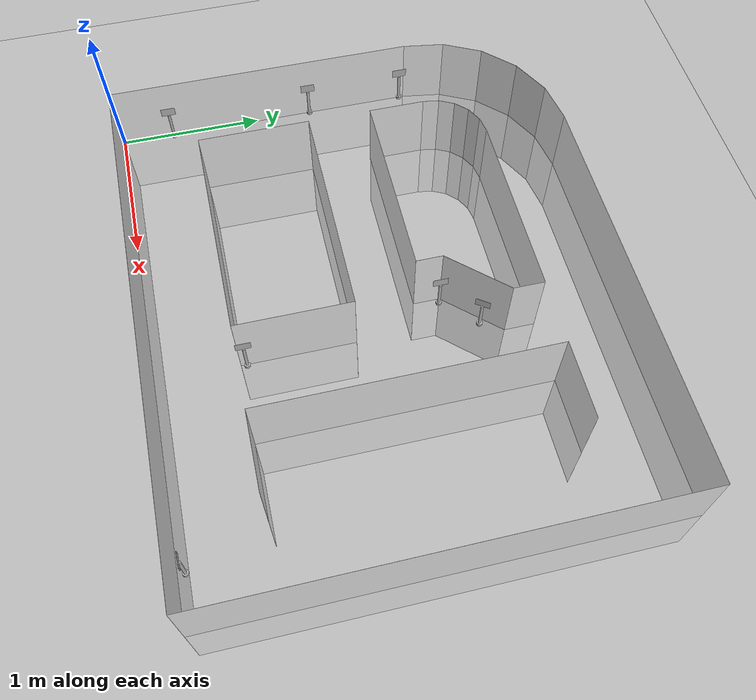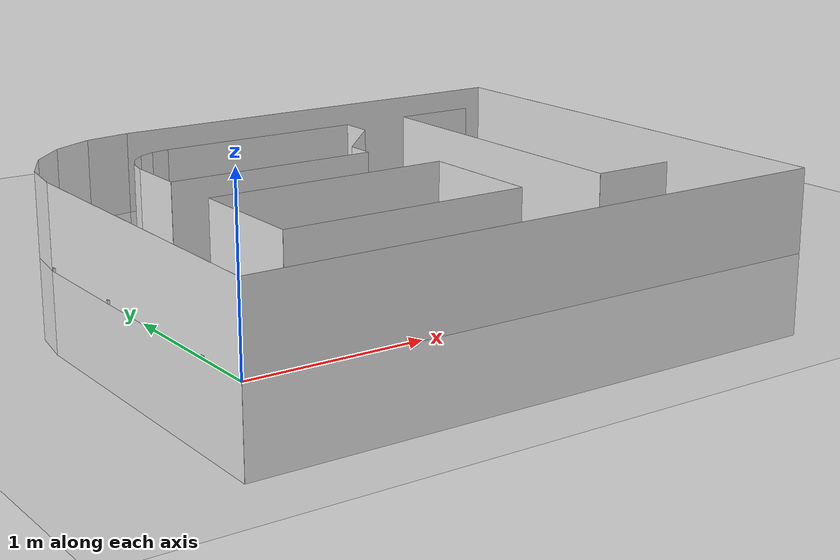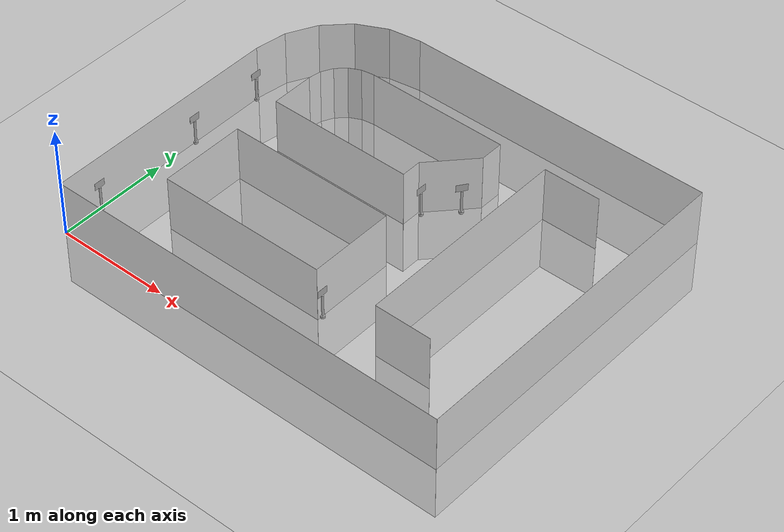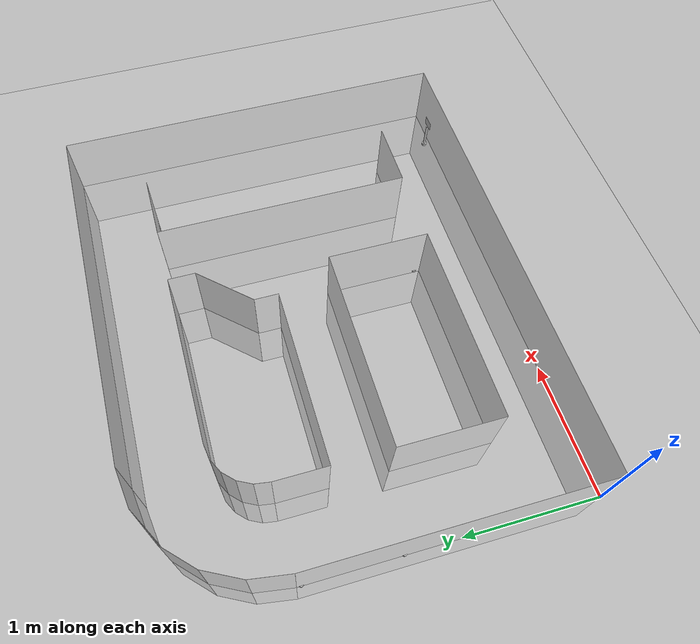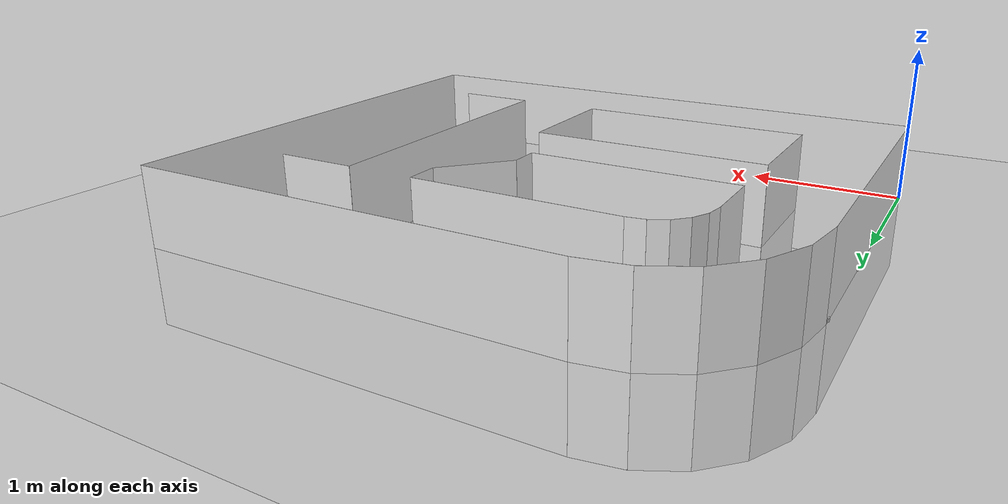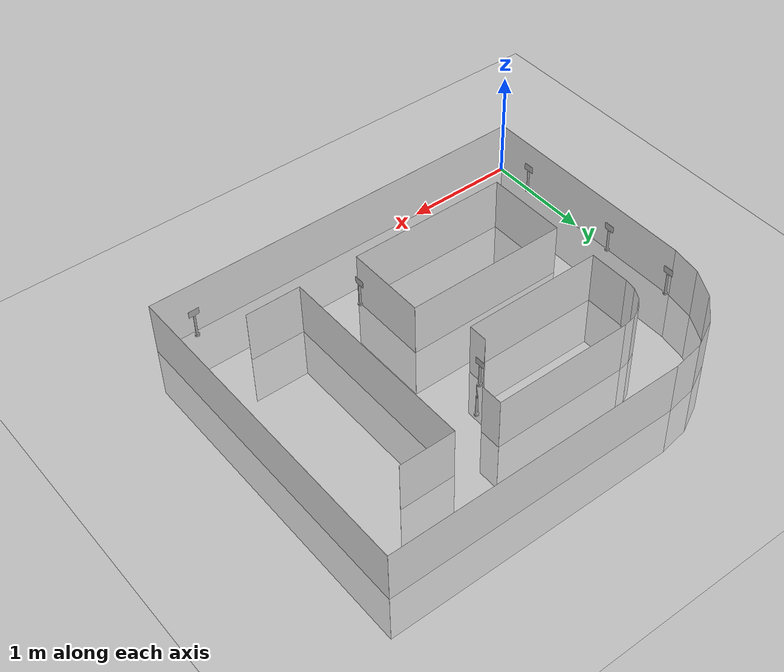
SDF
<sdf version="1.6">
 <world name="default">
  <light name="sun" type="directional">
   <pose>0 0 10 0 -0 0</pose>
   <diffuse>0.8 0.8 0.8 1</diffuse>
   <specular>0.1 0.1 0.1 1</specular>
   <attenuation>
    <range>1000</range>
    <constant>0.9</constant>
    <linear>0.01</linear>
    <quadratic>0.001</quadratic>
   </attenuation>
   <direction>-0.5 0.5 -1</direction>
  </light>
  <model name="ground_plane">
   <static>1</static>
   <link name="link">
    <collision name="collision">
     <geometry><plane><normal>0 0 1</normal><size>100 100</size></plane></geometry>
     <surface><friction><ode><mu>100</mu><mu2>50</mu2></ode></friction></surface>
    </collision>
    <visual name="visual">
     <cast_shadows>0</cast_shadows>
     <geometry><plane><normal>0 0 1</normal><size>100 100</size></plane></geometry>
     <material>
      <script><uri>file://media/materials/scripts/gazebo.material</uri><name>Gazebo/Grey</name></script>
     </material>
    </visual>
   </link>
  </model>
  <model name="wall_0">
   <static>1</static>
   <link name="link">
    <collision name="collision"><geometry><box><size>2.1336 0.001 1</size></box></geometry></collision>
    <visual name="visual">
     <geometry><box><size>2.1336 0.001 1</size></box></geometry>
     <material>
      <script><name>Gazebo/White</name><uri>file://media/materials/scripts/gazebo.material</uri></script>
     </material>
    </visual>
   </link>
   <pose>0 1.0668 0 0 -0 1.5708</pose>
  </model>
  <model name="wall_1">
   <static>1</static>
   <link name="link">
    <collision name="collision"><geometry><box><size>0.286088 0.001 1</size></box></geometry></collision>
    <visual name="visual">
     <geometry><box><size>0.286088 0.001 1</size></box></geometry>
     <material>
      <script><name>Gazebo/White</name><uri>file://media/materials/scripts/gazebo.material</uri></script>
     </material>
    </visual>
   </link>
   <pose>0.022377 2.27489 0 0 -0 1.41372</pose>
  </model>
  <model name="wall_2">
   <static>1</static>
   <link name="link">
    <collision name="collision"><geometry><box><size>0.286088 0.001 1</size></box></geometry></collision>
    <visual name="visual">
     <geometry><box><size>0.286088 0.001 1</size></box></geometry>
     <material>
      <script><name>Gazebo/White</name><uri>file://media/materials/scripts/gazebo.material</uri></script>
     </material>
    </visual>
   </link>
   <pose>0.109695 2.54362 0 0 -0 1.09956</pose>
  </model>
  <model name="wall_3">
   <static>1</static>
   <link name="link">
    <collision name="collision"><geometry><box><size>0.286088 0.001 1</size></box></geometry></collision>
    <visual name="visual">
     <geometry><box><size>0.286088 0.001 1</size></box></geometry>
     <material>
      <script><name>Gazebo/White</name><uri>file://media/materials/scripts/gazebo.material</uri></script>
     </material>
    </visual>
   </link>
   <pose>0.275783 2.77222 0 0 -0 0.785398</pose>
  </model>
  <model name="wall_4">
   <static>1</static>
   <link name="link">
    <collision name="collision"><geometry><box><size>0.286088 0.001 1</size></box></geometry></collision>
    <visual name="visual">
     <geometry><box><size>0.286088 0.001 1</size></box></geometry>
     <material>
      <script><name>Gazebo/White</name><uri>file://media/materials/scripts/gazebo.material</uri></script>
     </material>
    </visual>
   </link>
   <pose>0.504383 2.93831 0 0 -0 0.471239</pose>
  </model>
  <model name="wall_5">
   <static>1</static>
   <link name="link">
    <collision name="collision"><geometry><box><size>0.286088 0.001 1</size></box></geometry></collision>
    <visual name="visual">
     <geometry><box><size>0.286088 0.001 1</size></box></geometry>
     <material>
      <script><name>Gazebo/White</name><uri>file://media/materials/scripts/gazebo.material</uri></script>
     </material>
    </visual>
   </link>
   <pose>0.773119 3.02563 0 0 -0 0.15708</pose>
  </model>
  <model name="wall_6">
   <static>1</static>
   <link name="link">
    <collision name="collision"><geometry><box><size>2.74321 0.001 1</size></box></geometry></collision>
    <visual name="visual">
     <geometry><box><size>2.74321 0.001 1</size></box></geometry>
     <material>
      <script><name>Gazebo/White</name><uri>file://media/materials/scripts/gazebo.material</uri></script>
     </material>
    </visual>
   </link>
   <pose>2.286 3.04801 0 0 -0 0</pose>
  </model>
  <model name="wall_7">
   <static>1</static>
   <link name="link">
    <collision name="collision"><geometry><box><size>3.04801 0.001 1</size></box></geometry></collision>
    <visual name="visual">
     <geometry><box><size>3.04801 0.001 1</size></box></geometry>
     <material>
      <script><name>Gazebo/White</name><uri>file://media/materials/scripts/gazebo.material</uri></script>
     </material>
    </visual>
   </link>
   <pose>3.65761 1.524 0 0 0 -1.5708</pose>
  </model>
  <model name="wall_8">
   <static>1</static>
   <link name="link">
    <collision name="collision"><geometry><box><size>3.65761 0.001 1</size></box></geometry></collision>
    <visual name="visual">
     <geometry><box><size>3.65761 0.001 1</size></box></geometry>
     <material>
      <script><name>Gazebo/White</name><uri>file://media/materials/scripts/gazebo.material</uri></script>
     </material>
    </visual>
   </link>
   <pose>1.8288 0 0 0 0 -3.14159</pose>
  </model>
  <model name="wall_9">
   <static>1</static>
   <link name="link">
    <collision name="collision"><geometry><box><size>0.762002 0.001 1</size></box></geometry></collision>
    <visual name="visual">
     <geometry><box><size>0.762002 0.001 1</size></box></geometry>
     <material>
      <script><name>Gazebo/White</name><uri>file://media/materials/scripts/gazebo.material</uri></script>
     </material>
    </visual>
   </link>
   <pose>0.558801 0.939802 0 0 -0 1.5708</pose>
  </model>
  <model name="wall_10">
   <static>1</static>
   <link name="link">
    <collision name="collision"><geometry><box><size>1.4986 0.001 1</size></box></geometry></collision>
    <visual name="visual">
     <geometry><box><size>1.4986 0.001 1</size></box></geometry>
     <material>
      <script><name>Gazebo/White</name><uri>file://media/materials/scripts/gazebo.material</uri></script>
     </material>
    </visual>
   </link>
   <pose>1.3081 1.3208 0 0 -0 0</pose>
  </model>
  <model name="wall_11">
   <static>1</static>
   <link name="link">
    <collision name="collision"><geometry><box><size>0.762002 0.001 1</size></box></geometry></collision>
    <visual name="visual">
     <geometry><box><size>0.762002 0.001 1</size></box></geometry>
     <material>
      <script><name>Gazebo/White</name><uri>file://media/materials/scripts/gazebo.material</uri></script>
     </material>
    </visual>
   </link>
   <pose>2.0574 0.939802 0 0 0 -1.5708</pose>
  </model>
  <model name="wall_12">
   <static>1</static>
   <link name="link">
    <collision name="collision"><geometry><box><size>1.4986 0.001 1</size></box></geometry></collision>
    <visual name="visual">
     <geometry><box><size>1.4986 0.001 1</size></box></geometry>
     <material>
      <script><name>Gazebo/White</name><uri>file://media/materials/scripts/gazebo.material</uri></script>
     </material>
    </visual>
   </link>
   <pose>1.3081 0.558801 0 0 0 -3.14159</pose>
  </model>
  <model name="wall_13">
   <static>1</static>
   <link name="link">
    <collision name="collision"><geometry><box><size>0.381001 0.001 1</size></box></geometry></collision>
    <visual name="visual">
     <geometry><box><size>0.381001 0.001 1</size></box></geometry>
     <material>
      <script><name>Gazebo/White</name><uri>file://media/materials/scripts/gazebo.material</uri></script>
     </material>
    </visual>
   </link>
   <pose>0.558801 1.9431 0 0 -0 1.5708</pose>
  </model>
  <model name="wall_14">
   <static>1</static>
   <link name="link">
    <collision name="collision"><geometry><box><size>0.111256 0.001 1</size></box></geometry></collision>
    <visual name="visual">
     <geometry><box><size>0.111256 0.001 1</size></box></geometry>
     <material>
      <script><name>Gazebo/White</name><uri>file://media/materials/scripts/gazebo.material</uri></script>
     </material>
    </visual>
   </link>
   <pose>0.567503 2.18855 0 0 -0 1.41372</pose>
  </model>
  <model name="wall_15">
   <static>1</static>
   <link name="link">
    <collision name="collision"><geometry><box><size>0.111256 0.001 1</size></box></geometry></collision>
    <visual name="visual">
     <geometry><box><size>0.111256 0.001 1</size></box></geometry>
     <material>
      <script><name>Gazebo/White</name><uri>file://media/materials/scripts/gazebo.material</uri></script>
     </material>
    </visual>
   </link>
   <pose>0.60146 2.29306 0 0 -0 1.09956</pose>
  </model>
  <model name="wall_16">
   <static>1</static>
   <link name="link">
    <collision name="collision"><geometry><box><size>0.111256 0.001 1</size></box></geometry></collision>
    <visual name="visual">
     <geometry><box><size>0.111256 0.001 1</size></box></geometry>
     <material>
      <script><name>Gazebo/White</name><uri>file://media/materials/scripts/gazebo.material</uri></script>
     </material>
    </visual>
   </link>
   <pose>0.66605 2.38196 0 0 -0 0.785398</pose>
  </model>
  <model name="wall_17">
   <static>1</static>
   <link name="link">
    <collision name="collision"><geometry><box><size>0.111256 0.001 1</size></box></geometry></collision>
    <visual name="visual">
     <geometry><box><size>0.111256 0.001 1</size></box></geometry>
     <material>
      <script><name>Gazebo/White</name><uri>file://media/materials/scripts/gazebo.material</uri></script>
     </material>
    </visual>
   </link>
   <pose>0.75495 2.44655 0 0 -0 0.471239</pose>
  </model>
  <model name="wall_18">
   <static>1</static>
   <link name="link">
    <collision name="collision"><geometry><box><size>0.111256 0.001 1</size></box></geometry></collision>
    <visual name="visual">
     <geometry><box><size>0.111256 0.001 1</size></box></geometry>
     <material>
      <script><name>Gazebo/White</name><uri>file://media/materials/scripts/gazebo.material</uri></script>
     </material>
    </visual>
   </link>
   <pose>0.859458 2.4805 0 0 -0 0.15708</pose>
  </model>
  <model name="wall_19">
   <static>1</static>
   <link name="link">
    <collision name="collision"><geometry><box><size>1.27 0.001 1</size></box></geometry></collision>
    <visual name="visual">
     <geometry><box><size>1.27 0.001 1</size></box></geometry>
     <material>
      <script><name>Gazebo/White</name><uri>file://media/materials/scripts/gazebo.material</uri></script>
     </material>
    </visual>
   </link>
   <pose>1.5494 2.48921 0 0 -0 0</pose>
  </model>
  <model name="wall_20">
   <static>1</static>
   <link name="link">
    <collision name="collision"><geometry><box><size>0.2032 0.001 1</size></box></geometry></collision>
    <visual name="visual">
     <geometry><box><size>0.2032 0.001 1</size></box></geometry>
     <material>
      <script><name>Gazebo/White</name><uri>file://media/materials/scripts/gazebo.material</uri></script>
     </material>
    </visual>
   </link>
   <pose>2.1844 2.38761 0 0 0 -1.5708</pose>
  </model>
  <model name="wall_21">
   <static>1</static>
   <link name="link">
    <collision name="collision"><geometry><box><size>0.485267 0.001 1</size></box></geometry></collision>
    <visual name="visual">
     <geometry><box><size>0.485267 0.001 1</size></box></geometry>
     <material>
      <script><name>Gazebo/White</name><uri>file://media/materials/scripts/gazebo.material</uri></script>
     </material>
    </visual>
   </link>
   <pose>2.0193 2.1082 0 0 0 -2.31917</pose>
  </model>
  <model name="wall_22">
   <static>1</static>
   <link name="link">
    <collision name="collision"><geometry><box><size>0.1778 0.001 1</size></box></geometry></collision>
    <visual name="visual">
     <geometry><box><size>0.1778 0.001 1</size></box></geometry>
     <material>
      <script><name>Gazebo/White</name><uri>file://media/materials/scripts/gazebo.material</uri></script>
     </material>
    </visual>
   </link>
   <pose>1.8542 1.8415 0 0 0 -1.5708</pose>
  </model>
  <model name="wall_23">
   <static>1</static>
   <link name="link">
    <collision name="collision"><geometry><box><size>1.2954 0.001 1</size></box></geometry></collision>
    <visual name="visual">
     <geometry><box><size>1.2954 0.001 1</size></box></geometry>
     <material>
      <script><name>Gazebo/White</name><uri>file://media/materials/scripts/gazebo.material</uri></script>
     </material>
    </visual>
   </link>
   <pose>1.2065 1.7526 0 0 0 -3.14159</pose>
  </model>
  <model name="wall_24">
   <static>1</static>
   <link name="link">
    <collision name="collision"><geometry><box><size>0.508001 0.001 1</size></box></geometry></collision>
    <visual name="visual">
     <geometry><box><size>0.508001 0.001 1</size></box></geometry>
     <material>
      <script><name>Gazebo/White</name><uri>file://media/materials/scripts/gazebo.material</uri></script>
     </material>
    </visual>
   </link>
   <pose>2.87021 2.48921 0 0 -0 0</pose>
  </model>
  <model name="wall_25">
   <static>1</static>
   <link name="link">
    <collision name="collision"><geometry><box><size>0.508001 0.001 1</size></box></geometry></collision>
    <visual name="visual">
     <geometry><box><size>0.508001 0.001 1</size></box></geometry>
     <material>
      <script><name>Gazebo/White</name><uri>file://media/materials/scripts/gazebo.material</uri></script>
     </material>
    </visual>
   </link>
   <pose>2.87021 0.558801 0 0 0 -3.14159</pose>
  </model>
  <model name="wall_26">
   <static>1</static>
   <link name="link">
    <collision name="collision"><geometry><box><size>1.9304 0.001 1</size></box></geometry></collision>
    <visual name="visual">
     <geometry><box><size>1.9304 0.001 1</size></box></geometry>
     <material>
      <script><name>Gazebo/White</name><uri>file://media/materials/scripts/gazebo.material</uri></script>
     </material>
    </visual>
   </link>
   <pose>2.6162 1.524 0 0 -0 1.5708</pose>
  </model>
  <model name="flag">
   <link name="plate">
    <pose>0 0 0.2425 0 -0 0</pose>
    <collision name="collision">
     <geometry><box><size>0.001 0.1 0.065</size></box></geometry>
     <surface><friction><ode><mu>1</mu><mu2>1</mu2></ode></friction></surface>
    </collision>
    <visual name="visual">
     <geometry><box><size>0.001 0.1 0.065</size></box></geometry>
     <material>
      <script>
       <uri>model://apple/materials/scripts</uri>
       <uri>model://apple/materials/textures</uri>
       <name>apples/Diffuse</name>
      </script>
     </material>
    </visual>
    <inertial>
     <inertia><ixx>0.1</ixx><ixy>0</ixy><ixz>0</ixz><iyy>0.1</iyy><iyz>0</iyz><izz>0.1</izz></inertia>
     <mass>0.1</mass>
    </inertial>
   </link>
   <link name="pole">
    <pose>0 0 0.11 0 -0 0</pose>
    <collision name="collision">
     <geometry><cylinder><radius>0.01</radius><length>0.2</length></cylinder></geometry>
     <surface>
      <friction><torsional><coefficient>1</coefficient></torsional><ode><mu>1</mu><mu2>1</mu2></ode></friction>
     </surface>
    </collision>
    <visual name="visual">
     <geometry><cylinder><radius>0.01</radius><length>0.2</length></cylinder></geometry>
    </visual>
    <inertial>
     <inertia><ixx>1</ixx><ixy>0</ixy><ixz>0</ixz><iyy>1</iyy><iyz>0</iyz><izz>1</izz></inertia>
     <mass>1</mass>
    </inertial>
   </link>
   <link name="base">
    <collision name="collision">
     <geometry><cylinder><radius>0.02</radius><length>0.02</length></cylinder></geometry>
     <surface><friction><ode><mu>0.01</mu><mu2>0.01</mu2></ode></friction></surface>
    </collision>
    <visual name="visual">
     <geometry><cylinder><radius>0.02</radius><length>0.02</length></cylinder></geometry>
    </visual>
    <inertial>
     <inertia><ixx>0.1</ixx><ixy>0</ixy><ixz>0</ixz><iyy>0.1</iyy><iyz>0</iyz><izz>0.1</izz></inertia>
     <mass>0.1</mass>
    </inertial>
    <gravity>0</gravity>
   </link>
   <joint name="base_pole" type="fixed">
    <parent>base</parent>
    <child>pole</child>
    <pose>0 0 0.02 0 -0 0</pose>
   </joint>
   <joint name="pole_plate" type="fixed">
    <parent>pole</parent>
    <child>plate</child>
    <pose>0 0 0.1 0 -0 0</pose>
   </joint>
   <pose>0.011049 1.40024 0.01002 0.001083 -0.000146 3.14147</pose>
  </model>
  <gravity>0 0 -9.8</gravity>
  <magnetic_field>6e-06 2.3e-05 -4.2e-05</magnetic_field>
  <atmosphere type="adiabatic"/>
  <physics name="default_physics" default="0" type="ode">
   <max_step_size>0.001</max_step_size>
   <real_time_factor>1</real_time_factor>
   <real_time_update_rate>1000</real_time_update_rate>
  </physics>
  <scene><ambient>0.4 0.4 0.4 1</ambient><background>0.7 0.7 0.7 1</background><shadows>1</shadows></scene>
  <spherical_coordinates>
   <surface_model>EARTH_WGS84</surface_model>
   <latitude_deg>0</latitude_deg>
   <longitude_deg>0</longitude_deg>
   <elevation>0</elevation>
   <heading_deg>0</heading_deg>
  </spherical_coordinates>
  <model name="flag_clone">
   <link name="plate">
    <pose>0 0 0.2425 0 -0 0</pose>
    <collision name="collision">
     <geometry><box><size>0.001 0.1 0.065</size></box></geometry>
     <surface><friction><ode><mu>1</mu><mu2>1</mu2></ode></friction></surface>
    </collision>
    <visual name="visual">
     <geometry><box><size>0.001 0.1 0.065</size></box></geometry>
     <material>
      <script>
       <uri>model://donut/materials/scripts</uri>
       <uri>model://donut/materials/textures</uri>
       <name>donut/Diffuse</name>
      </script>
     </material>
    </visual>
    <inertial>
     <inertia><ixx>0.1</ixx><ixy>0</ixy><ixz>0</ixz><iyy>0.1</iyy><iyz>0</iyz><izz>0.1</izz></inertia>
     <mass>0.1</mass>
    </inertial>
   </link>
   <link name="pole">
    <pose>0 0 0.11 0 -0 0</pose>
    <collision name="collision">
     <geometry><cylinder><radius>0.01</radius><length>0.2</length></cylinder></geometry>
     <surface>
      <friction><torsional><coefficient>1</coefficient></torsional><ode><mu>1</mu><mu2>1</mu2></ode></friction>
     </surface>
    </collision>
    <visual name="visual">
     <geometry><cylinder><radius>0.01</radius><length>0.2</length></cylinder></geometry>
    </visual>
    <inertial>
     <inertia><ixx>1</ixx><ixy>0</ixy><ixz>0</ixz><iyy>1</iyy><iyz>0</iyz><izz>1</izz></inertia>
     <mass>1</mass>
    </inertial>
   </link>
   <link name="base">
    <collision name="collision">
     <geometry><cylinder><radius>0.02</radius><length>0.02</length></cylinder></geometry>
     <surface><friction><ode><mu>0.01</mu><mu2>0.01</mu2></ode></friction></surface>
    </collision>
    <visual name="visual">
     <geometry><cylinder><radius>0.02</radius><length>0.02</length></cylinder></geometry>
    </visual>
    <inertial>
     <inertia><ixx>0.1</ixx><ixy>0</ixy><ixz>0</ixz><iyy>0.1</iyy><iyz>0</iyz><izz>0.1</izz></inertia>
     <mass>0.1</mass>
    </inertial>
    <gravity>0</gravity>
   </link>
   <joint name="base_pole" type="fixed">
    <parent>base</parent>
    <child>pole</child>
    <pose>0 0 0.02 0 -0 0</pose>
   </joint>
   <joint name="pole_plate" type="fixed">
    <parent>pole</parent>
    <child>plate</child>
    <pose>0 0 0.1 0 -0 0</pose>
   </joint>
   <pose>2.07 0.600231 0.010011 0.000137 -0.000521 -3.13991</pose>
  </model>
  <model name="flag_clone_0">
   <link name="plate">
    <pose>0 0 0.2425 0 -0 0</pose>
    <collision name="collision">
     <geometry><box><size>0.001 0.1 0.065</size></box></geometry>
     <surface><friction><ode><mu>1</mu><mu2>1</mu2></ode></friction></surface>
    </collision>
    <visual name="visual">
     <geometry><box><size>0.001 0.1 0.065</size></box></geometry>
     <material>
      <script>
       <uri>model://banana/materials/scripts</uri>
       <uri>model://banana/materials/textures</uri>
       <name>banana/Diffuse</name>
      </script>
     </material>
    </visual>
    <inertial>
     <inertia><ixx>0.1</ixx><ixy>0</ixy><ixz>0</ixz><iyy>0.1</iyy><iyz>0</iyz><izz>0.1</izz></inertia>
     <mass>0.1</mass>
    </inertial>
   </link>
   <link name="pole">
    <pose>0 0 0.11 0 -0 0</pose>
    <collision name="collision">
     <geometry><cylinder><radius>0.01</radius><length>0.2</length></cylinder></geometry>
     <surface>
      <friction><torsional><coefficient>1</coefficient></torsional><ode><mu>1</mu><mu2>1</mu2></ode></friction>
     </surface>
    </collision>
    <visual name="visual">
     <geometry><cylinder><radius>0.01</radius><length>0.2</length></cylinder></geometry>
    </visual>
    <inertial>
     <inertia><ixx>1</ixx><ixy>0</ixy><ixz>0</ixz><iyy>1</iyy><iyz>0</iyz><izz>1</izz></inertia>
     <mass>1</mass>
    </inertial>
   </link>
   <link name="base">
    <collision name="collision">
     <geometry><cylinder><radius>0.02</radius><length>0.02</length></cylinder></geometry>
     <surface><friction><ode><mu>0.01</mu><mu2>0.01</mu2></ode></friction></surface>
    </collision>
    <visual name="visual">
     <geometry><cylinder><radius>0.02</radius><length>0.02</length></cylinder></geometry>
    </visual>
    <inertial>
     <inertia><ixx>0.1</ixx><ixy>0</ixy><ixz>0</ixz><iyy>0.1</iyy><iyz>0</iyz><izz>0.1</izz></inertia>
     <mass>0.1</mass>
    </inertial>
    <gravity>0</gravity>
   </link>
   <joint name="base_pole" type="fixed">
    <parent>base</parent>
    <child>pole</child>
    <pose>0 0 0.02 0 -0 0</pose>
   </joint>
   <joint name="pole_plate" type="fixed">
    <parent>pole</parent>
    <child>plate</child>
    <pose>0 0 0.1 0 -0 0</pose>
   </joint>
   <pose>0.011071 0.368246 0.010017 0.000845 0.000104 -3.14052</pose>
  </model>
  <model name="flag_clone_1">
   <link name="plate">
    <pose>0 0 0.2425 0 -0 0</pose>
    <collision name="collision">
     <geometry><box><size>0.001 0.1 0.065</size></box></geometry>
     <surface><friction><ode><mu>1</mu><mu2>1</mu2></ode></friction></surface>
    </collision>
    <visual name="visual">
     <geometry><box><size>0.001 0.1 0.065</size></box></geometry>
     <material>
      <script>
       <uri>model://broccoli/materials/scripts</uri>
       <uri>model://broccoli/materials/textures</uri>
       <name>broccoli/Diffuse</name>
      </script>
     </material>
    </visual>
    <inertial>
     <inertia><ixx>0.1</ixx><ixy>0</ixy><ixz>0</ixz><iyy>0.1</iyy><iyz>0</iyz><izz>0.1</izz></inertia>
     <mass>0.1</mass>
    </inertial>
   </link>
   <link name="pole">
    <pose>0 0 0.11 0 -0 0</pose>
    <collision name="collision">
     <geometry><cylinder><radius>0.01</radius><length>0.2</length></cylinder></geometry>
     <surface>
      <friction><torsional><coefficient>1</coefficient></torsional><ode><mu>1</mu><mu2>1</mu2></ode></friction>
     </surface>
    </collision>
    <visual name="visual">
     <geometry><cylinder><radius>0.01</radius><length>0.2</length></cylinder></geometry>
    </visual>
    <inertial>
     <inertia><ixx>1</ixx><ixy>0</ixy><ixz>0</ixz><iyy>1</iyy><iyz>0</iyz><izz>1</izz></inertia>
     <mass>1</mass>
    </inertial>
   </link>
   <link name="base">
    <collision name="collision">
     <geometry><cylinder><radius>0.02</radius><length>0.02</length></cylinder></geometry>
     <surface><friction><ode><mu>0.01</mu><mu2>0.01</mu2></ode></friction></surface>
    </collision>
    <visual name="visual">
     <geometry><cylinder><radius>0.02</radius><length>0.02</length></cylinder></geometry>
    </visual>
    <inertial>
     <inertia><ixx>0.1</ixx><ixy>0</ixy><ixz>0</ixz><iyy>0.1</iyy><iyz>0</iyz><izz>0.1</izz></inertia>
     <mass>0.1</mass>
    </inertial>
    <gravity>0</gravity>
   </link>
   <joint name="base_pole" type="fixed">
    <parent>base</parent>
    <child>pole</child>
    <pose>0 0 0.02 0 -0 0</pose>
   </joint>
   <joint name="pole_plate" type="fixed">
    <parent>pole</parent>
    <child>plate</child>
    <pose>0 0 0.1 0 -0 0</pose>
   </joint>
   <pose>1.89035 1.91789 0.010013 -0.00064 0.000177 3.13182</pose>
  </model>
  <model name="flag_clone_2">
   <link name="plate">
    <pose>0 0 0.2425 0 -0 0</pose>
    <collision name="collision">
     <geometry><box><size>0.001 0.1 0.065</size></box></geometry>
     <surface><friction><ode><mu>1</mu><mu2>1</mu2></ode></friction></surface>
    </collision>
    <visual name="visual">
     <geometry><box><size>0.001 0.1 0.065</size></box></geometry>
     <material>
      <script>
       <uri>model://sandwich/materials/scripts</uri>
       <uri>model://sandwich/materials/textures</uri>
       <name>sandwich/Diffuse</name>
      </script>
     </material>
    </visual>
    <inertial>
     <inertia><ixx>0.1</ixx><ixy>0</ixy><ixz>0</ixz><iyy>0.1</iyy><iyz>0</iyz><izz>0.1</izz></inertia>
     <mass>0.1</mass>
    </inertial>
   </link>
   <link name="pole">
    <pose>0 0 0.11 0 -0 0</pose>
    <collision name="collision">
     <geometry><cylinder><radius>0.01</radius><length>0.2</length></cylinder></geometry>
     <surface>
      <friction><torsional><coefficient>1</coefficient></torsional><ode><mu>1</mu><mu2>1</mu2></ode></friction>
     </surface>
    </collision>
    <visual name="visual">
     <geometry><cylinder><radius>0.01</radius><length>0.2</length></cylinder></geometry>
    </visual>
    <inertial>
     <inertia><ixx>1</ixx><ixy>0</ixy><ixz>0</ixz><iyy>1</iyy><iyz>0</iyz><izz>1</izz></inertia>
     <mass>1</mass>
    </inertial>
   </link>
   <link name="base">
    <collision name="collision">
     <geometry><cylinder><radius>0.02</radius><length>0.02</length></cylinder></geometry>
     <surface><friction><ode><mu>0.01</mu><mu2>0.01</mu2></ode></friction></surface>
    </collision>
    <visual name="visual">
     <geometry><cylinder><radius>0.02</radius><length>0.02</length></cylinder></geometry>
    </visual>
    <inertial>
     <inertia><ixx>0.1</ixx><ixy>0</ixy><ixz>0</ixz><iyy>0.1</iyy><iyz>0</iyz><izz>0.1</izz></inertia>
     <mass>0.1</mass>
    </inertial>
    <gravity>0</gravity>
   </link>
   <joint name="base_pole" type="fixed">
    <parent>base</parent>
    <child>pole</child>
    <pose>0 0 0.02 0 -0 0</pose>
   </joint>
   <joint name="pole_plate" type="fixed">
    <parent>pole</parent>
    <child>plate</child>
    <pose>0 0 0.1 0 -0 0</pose>
   </joint>
   <pose>0.011061 2.10031 0.010025 -0.001146 0.00056 -3.14136</pose>
  </model>
  <model name="flag_clone_clone">
   <link name="plate">
    <pose>0 0 0.2425 0 -0 0</pose>
    <collision name="collision">
     <geometry><box><size>0.001 0.1 0.065</size></box></geometry>
     <surface><friction><ode><mu>1</mu><mu2>1</mu2></ode></friction></surface>
    </collision>
    <visual name="visual">
     <geometry><box><size>0.001 0.1 0.065</size></box></geometry>
     <material>
      <script>
       <uri>model://dog/materials/scripts</uri>
       <uri>model://dog/materials/textures</uri>
       <name>dog/Diffuse</name>
      </script>
     </material>
    </visual>
    <inertial>
     <inertia><ixx>0.1</ixx><ixy>0</ixy><ixz>0</ixz><iyy>0.1</iyy><iyz>0</iyz><izz>0.1</izz></inertia>
     <mass>0.1</mass>
    </inertial>
   </link>
   <link name="pole">
    <pose>0 0 0.11 0 -0 0</pose>
    <collision name="collision">
     <geometry><cylinder><radius>0.01</radius><length>0.2</length></cylinder></geometry>
     <surface>
      <friction><torsional><coefficient>1</coefficient></torsional><ode><mu>1</mu><mu2>1</mu2></ode></friction>
     </surface>
    </collision>
    <visual name="visual">
     <geometry><cylinder><radius>0.01</radius><length>0.2</length></cylinder></geometry>
    </visual>
    <inertial>
     <inertia><ixx>1</ixx><ixy>0</ixy><ixz>0</ixz><iyy>1</iyy><iyz>0</iyz><izz>1</izz></inertia>
     <mass>1</mass>
    </inertial>
   </link>
   <link name="base">
    <collision name="collision">
     <geometry><cylinder><radius>0.02</radius><length>0.02</length></cylinder></geometry>
     <surface><friction><ode><mu>0.01</mu><mu2>0.01</mu2></ode></friction></surface>
    </collision>
    <visual name="visual">
     <geometry><cylinder><radius>0.02</radius><length>0.02</length></cylinder></geometry>
    </visual>
    <inertial>
     <inertia><ixx>0.1</ixx><ixy>0</ixy><ixz>0</ixz><iyy>0.1</iyy><iyz>0</iyz><izz>0.1</izz></inertia>
     <mass>0.1</mass>
    </inertial>
    <gravity>0</gravity>
   </link>
   <joint name="base_pole" type="fixed">
    <parent>base</parent>
    <child>pole</child>
    <pose>0 0 0.02 0 -0 0</pose>
   </joint>
   <joint name="pole_plate" type="fixed">
    <parent>pole</parent>
    <child>plate</child>
    <pose>0 0 0.1 0 -0 0</pose>
   </joint>
   <pose>3.3132 0.05134 0.009999 -0.00023 -4.1e-05 -1.54003</pose>
  </model>
  <model name="flag_clone_1_clone">
   <link name="plate">
    <pose>0 0 0.2425 0 -0 0</pose>
    <collision name="collision">
     <geometry><box><size>0.001 0.1 0.065</size></box></geometry>
     <surface><friction><ode><mu>1</mu><mu2>1</mu2></ode></friction></surface>
    </collision>
    <visual name="visual">
     <geometry><box><size>0.001 0.1 0.065</size></box></geometry>
     <material>
      <script>
       <uri>model://cat/materials/scripts</uri>
       <uri>model://cat/materials/textures</uri>
       <name>cat/Diffuse</name>
      </script>
     </material>
    </visual>
    <inertial>
     <inertia><ixx>0.1</ixx><ixy>0</ixy><ixz>0</ixz><iyy>0.1</iyy><iyz>0</iyz><izz>0.1</izz></inertia>
     <mass>0.1</mass>
    </inertial>
   </link>
   <link name="pole">
    <pose>0 0 0.11 0 -0 0</pose>
    <collision name="collision">
     <geometry><cylinder><radius>0.01</radius><length>0.2</length></cylinder></geometry>
     <surface>
      <friction><torsional><coefficient>1</coefficient></torsional><ode><mu>1</mu><mu2>1</mu2></ode></friction>
     </surface>
    </collision>
    <visual name="visual">
     <geometry><cylinder><radius>0.01</radius><length>0.2</length></cylinder></geometry>
    </visual>
    <inertial>
     <inertia><ixx>1</ixx><ixy>0</ixy><ixz>0</ixz><iyy>1</iyy><iyz>0</iyz><izz>1</izz></inertia>
     <mass>1</mass>
    </inertial>
   </link>
   <link name="base">
    <collision name="collision">
     <geometry><cylinder><radius>0.02</radius><length>0.02</length></cylinder></geometry>
     <surface><friction><ode><mu>0.01</mu><mu2>0.01</mu2></ode></friction></surface>
    </collision>
    <visual name="visual">
     <geometry><cylinder><radius>0.02</radius><length>0.02</length></cylinder></geometry>
    </visual>
    <inertial>
     <inertia><ixx>0.1</ixx><ixy>0</ixy><ixz>0</ixz><iyy>0.1</iyy><iyz>0</iyz><izz>0.1</izz></inertia>
     <mass>0.1</mass>
    </inertial>
    <gravity>0</gravity>
   </link>
   <joint name="base_pole" type="fixed">
    <parent>base</parent>
    <child>pole</child>
    <pose>0 0 0.02 0 -0 0</pose>
   </joint>
   <joint name="pole_plate" type="fixed">
    <parent>pole</parent>
    <child>plate</child>
    <pose>0 0 0.1 0 -0 0</pose>
   </joint>
   <pose>2.10655 2.13751 0.010001 0.000205 6.2e-05 2.52664</pose>
  </model>
 </world>
</sdf>
